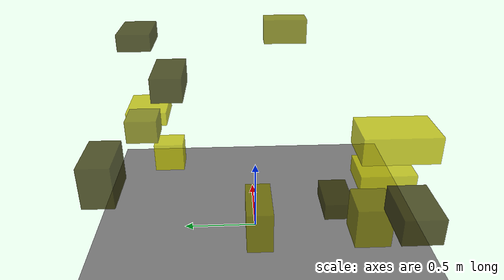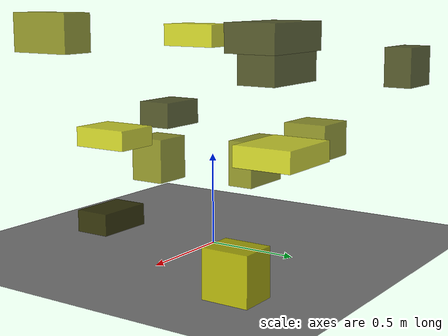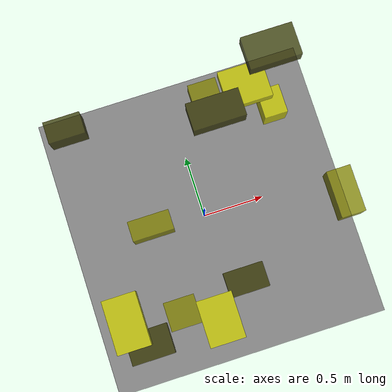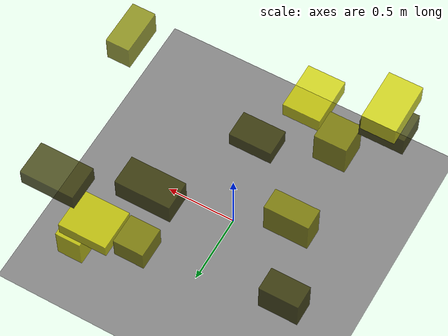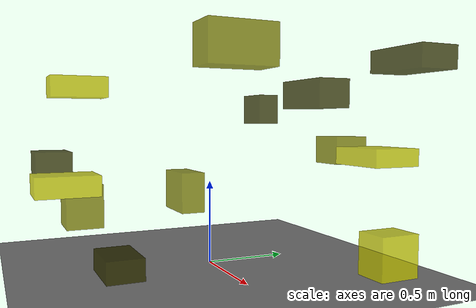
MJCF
<?xml version="1.0"?>
<mujoco model="obstacle_scene">
  <compiler angle="radian" coordinate="local"/>
  <option timestep="0.001" gravity="0 0 -9.81"/>

  <asset>
    <material name="obstacle_mat" rgba="0.8 0.8 0.0 0.8"/>
    <material name="ground_mat" rgba="0.5 0.5 0.5 1"/>
  </asset>

  <worldbody>
    <!-- Ground plane -->
    <geom name="ground" type="plane" size="3 3 0.1" material="ground_mat"/>

    <!-- Obstacles -->
    <body name="obstacle_0" pos="-0.792221 0.781569 0.959580">
      <geom name="obs_0" type="box" size="0.133933 0.079331 0.110764" rgba="0.2 0.2 0.0 0.8"/>
    </body>
    <body name="obstacle_1" pos="-0.431111 -0.002489 0.395123">
      <geom name="obs_1" type="box" size="0.163539 0.078168 0.132157" rgba="0.5 0.5 0.0 0.8"/>
    </body>
    <body name="obstacle_2" pos="0.571062 0.778968 0.667223">
      <geom name="obs_2" type="box" size="0.173797 0.146173 0.049561" rgba="0.8 0.8 0.0 0.8"/>
    </body>
    <body name="obstacle_3" pos="0.156829 -0.606944 0.091784">
      <geom name="obs_3" type="box" size="0.163762 0.103572 0.061331" rgba="0.2 0.2 0.0 0.8"/>
    </body>
    <body name="obstacle_4" pos="-0.400603 -0.702276 0.344198">
      <geom name="obs_4" type="box" size="0.120794 0.112393 0.134737" rgba="0.5 0.5 0.0 0.8"/>
    </body>
    <body name="obstacle_5" pos="0.792619 0.683752 0.162689">
      <geom name="obs_5" type="box" size="0.093250 0.117642 0.117448" rgba="0.8 0.8 0.0 0.8"/>
    </body>
    <body name="obstacle_6" pos="0.755128 0.847327 1.191683">
      <geom name="obs_6" type="box" size="0.188097 0.119771 0.062269" rgba="0.2 0.2 0.0 0.8"/>
    </body>
    <body name="obstacle_7" pos="0.255671 0.773813 0.690260">
      <geom name="obs_7" type="box" size="0.107142 0.107673 0.081862" rgba="0.5 0.5 0.0 0.8"/>
    </body>
    <body name="obstacle_8" pos="-0.769807 -0.656561 1.098191">
      <geom name="obs_8" type="box" size="0.120117 0.189811 0.070490" rgba="0.8 0.8 0.0 0.8"/>
    </body>
    <body name="obstacle_9" pos="-0.696112 -0.847421 0.586693">
      <geom name="obs_9" type="box" size="0.162846 0.113842 0.081133" rgba="0.2 0.2 0.0 0.8"/>
    </body>
    <body name="obstacle_10" pos="0.907562 -0.272050 1.186843">
      <geom name="obs_10" type="box" size="0.083787 0.163787 0.092842" rgba="0.5 0.5 0.0 0.8"/>
    </body>
    <body name="obstacle_11" pos="-0.142975 -0.837103 0.503779">
      <geom name="obs_11" type="box" size="0.139142 0.180412 0.059590" rgba="0.8 0.8 0.0 0.8"/>
    </body>
    <body name="obstacle_12" pos="0.265529 0.570017 1.026161">
      <geom name="obs_12" type="box" size="0.194560 0.102576 0.083522" rgba="0.2 0.2 0.0 0.8"/>
    </body>
  </worldbody>
</mujoco>
